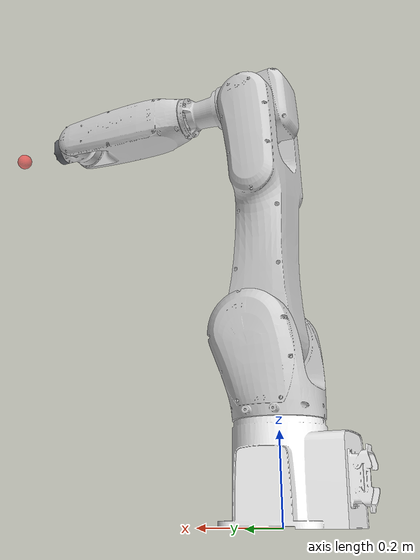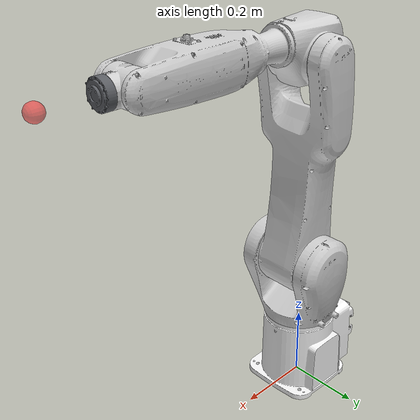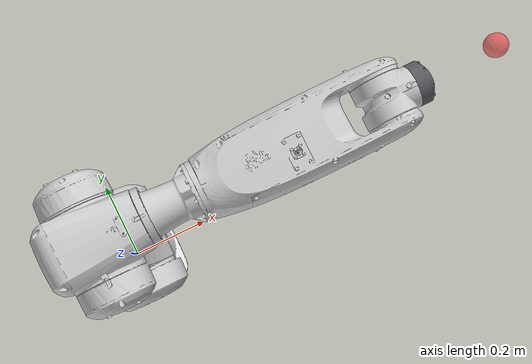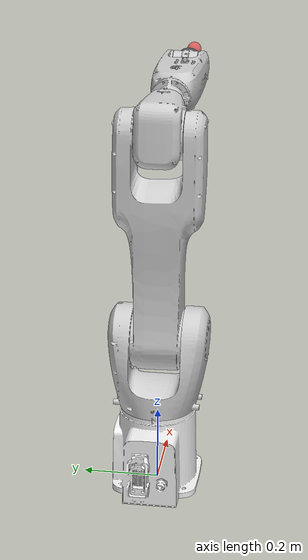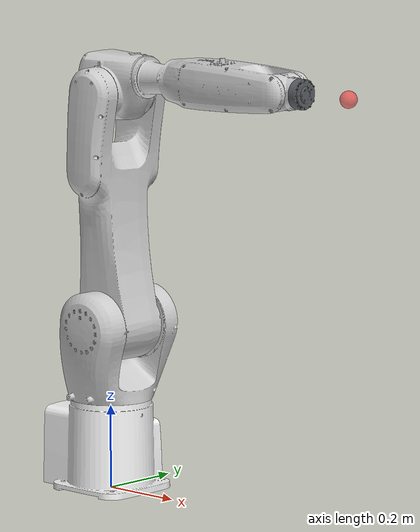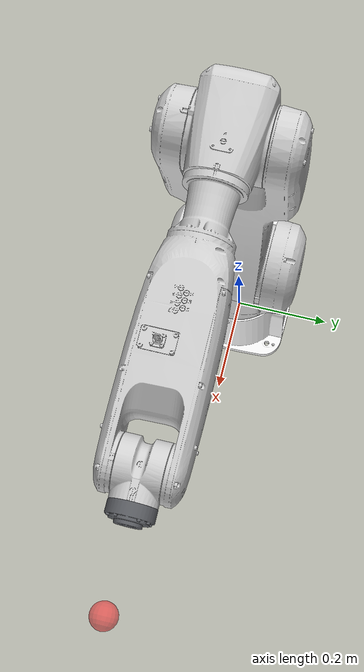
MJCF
<mujoco model="IRB-R10">
  <compiler angle="radian" autolimits="true" inertiafromgeom="true" />
  <option gravity="0 0 0" integrator="implicitfast" />

  <default>
    <joint damping="8" armature="0.2" />
    <geom type="mesh" contype="0" conaffinity="0" rgba="0.84 0.84 0.86 1" />
    <position kp="120" />
  </default>

  <asset>
    <mesh name="base_link_mesh" file="base_link.STL" />
    <mesh name="link_1_mesh" file="link_1.STL" />
    <mesh name="link_2_mesh" file="link_2.STL" />
    <mesh name="link_3_mesh" file="link_3.STL" />
    <mesh name="link_4_mesh" file="link_4.STL" />
    <mesh name="link_5_mesh" file="link_5.STL" />
    <mesh name="link_6_mesh" file="link_6.STL" />
  </asset>

  <worldbody>
    <body name="base_link">
      <geom mesh="base_link_mesh" rgba="0.98 0.98 0.98 1" />

      <body name="link_1" pos="0 0 0">
        <joint name="joint_1" type="hinge" axis="0 0 1" range="-6.283 6.283" />
        <geom mesh="link_1_mesh" rgba="0.82 0.82 0.82 1" />

        <body name="link_2" pos="0.025057 0 0.4" euler="1.5708 0 0">
          <joint name="joint_2" type="hinge" axis="0 0 1" range="-3.1416 3.1416" />
          <geom mesh="link_2_mesh" rgba="0.82 0.82 0.82 1" />

          <body name="link_3" pos="0 0.56016 0" euler="0 0 1.5708">
            <joint name="joint_3" type="hinge" axis="0 0 1" range="-3.1416 3.1416" />
            <geom mesh="link_3_mesh" rgba="0.82 0.82 0.82 1" />

            <body name="link_4" pos="0.040021 0 0" euler="1.5708 0 0">
              <joint name="joint_4" type="hinge" axis="0 0 1" range="-6.283 6.283" />
              <geom mesh="link_4_mesh" rgba="0.82 0.82 0.82 1" />

              <body name="link_5" pos="0 0 0.51505" euler="-1.5708 0 0">
                <joint name="joint_5" type="hinge" axis="0 0 1" range="-6.283 6.283" />
                <geom mesh="link_5_mesh" rgba="0.82 0.82 0.82 1" />

                <body name="link_6" pos="0 -0.08 0" euler="1.5708 0 0">
                  <joint name="joint_6" type="hinge" axis="0 0 1" range="-6.283 6.283" />
                  <geom mesh="link_6_mesh" rgba="0.36 0.37 0.39 1" />
                  <site name="tcp" pos="0 0 0.12" size="0.02" rgba="1 0.2 0.2 0.6" group="1" />
                </body>
              </body>
            </body>
          </body>
        </body>
      </body>
    </body>
  </worldbody>

  <actuator>
    <position name="joint_1_act" joint="joint_1" />
    <position name="joint_2_act" joint="joint_2" />
    <position name="joint_3_act" joint="joint_3" />
    <position name="joint_4_act" joint="joint_4" />
    <position name="joint_5_act" joint="joint_5" />
    <position name="joint_6_act" joint="joint_6" />
  </actuator>
</mujoco>
